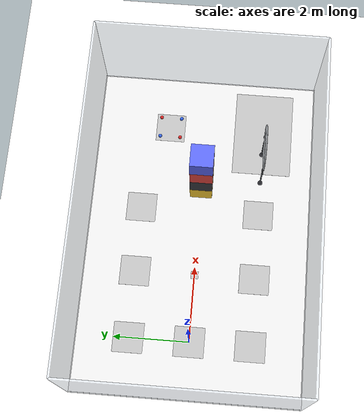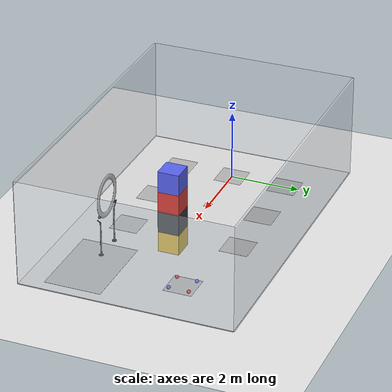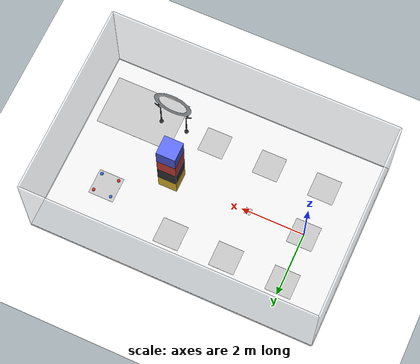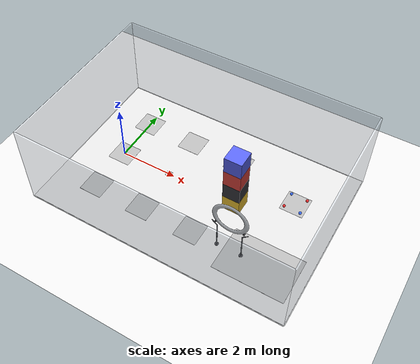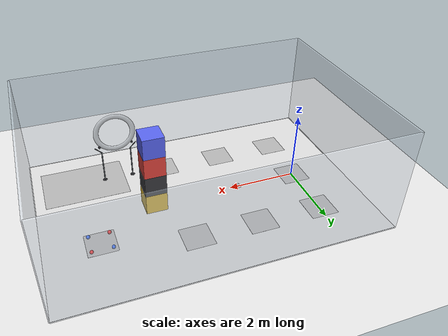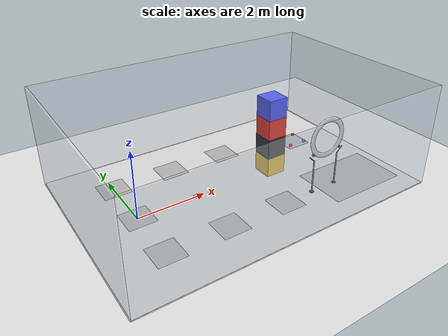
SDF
<sdf version='1.7'>
  <world name='craic_2026'>
    <light name='sun' type='directional'>
      <cast_shadows>1</cast_shadows>
      <pose>0 0 10 0 0 0</pose>
      <diffuse>0.85 0.85 0.85 1</diffuse>
      <specular>0.2 0.2 0.2 1</specular>
      <attenuation>
        <range>1000</range>
        <constant>0.9</constant>
        <linear>0.01</linear>
        <quadratic>0.001</quadratic>
      </attenuation>
      <direction>-0.45 0.18 -0.87</direction>
    </light>
    <gravity>0 0 -9.8</gravity>
    <magnetic_field>6e-06 2.3e-05 -4.2e-05</magnetic_field>
    <atmosphere type='adiabatic'/>
    <physics type='ode'>
      <max_step_size>0.001</max_step_size>
      <real_time_factor>1</real_time_factor>
      <real_time_update_rate>1000</real_time_update_rate>
    </physics>
    <scene>
      <ambient>0.5 0.5 0.5 1</ambient>
      <background>0.97 0.97 0.99 1</background>
      <shadows>1</shadows>
    </scene>
    <wind/>
    <spherical_coordinates>
      <surface_model>EARTH_WGS84</surface_model>
      <latitude_deg>0</latitude_deg>
      <longitude_deg>0</longitude_deg>
      <elevation>0</elevation>
      <heading_deg>0</heading_deg>
    </spherical_coordinates>
    <model name='ground_plane'>
      <static>1</static>
      <link name='link'>
        <collision name='collision'>
          <geometry>
            <plane>
              <normal>0 0 1</normal>
              <size>100 100</size>
            </plane>
          </geometry>
          <surface>
            <contact><ode/></contact>
            <bounce/>
            <friction>
              <torsional><ode/></torsional>
              <ode/>
            </friction>
          </surface>
        </collision>
        <visual name='visual'>
          <cast_shadows>0</cast_shadows>
          <geometry>
            <plane>
              <normal>0 0 1</normal>
              <size>100 100</size>
            </plane>
          </geometry>
          <material>
            <script>
              <uri>file://media/materials/scripts/gazebo.material</uri>
              <name>Gazebo/White</name>
            </script>
          </material>
        </visual>
      </link>
    </model>
    <include>
      <uri>model://craic_2026_arena</uri>
      <pose>0 0 0 0 0 0</pose>
    </include>
    <include>
      <uri>model://craic_2026_ring</uri>
      <pose>4.968642 -1.6 0 0 0 0</pose>
    </include>
  </world>
</sdf>

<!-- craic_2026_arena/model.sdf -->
<sdf version='1.7'>
  <model name='craic_2026_arena'>

    <model name='competition_floor'>
      <static>1</static>
      <pose>3 0 0.005 0 0 0</pose>
      <link name='link'>
        <collision name='collision'>
          <geometry>
            <box>
              <size>9 6 0.01</size>
            </box>
          </geometry>
          <surface>
            <contact><ode/></contact>
            <bounce/>
            <friction>
              <torsional><ode/></torsional>
              <ode/>
            </friction>
          </surface>
        </collision>
        <visual name='visual'>
          <geometry>
            <box>
              <size>9 6 0.01</size>
            </box>
          </geometry>
          <material>
            <ambient>0.88 0.88 0.88 1</ambient>
            <diffuse>0.88 0.88 0.88 1</diffuse>
            <specular>0.1 0.1 0.1 1</specular>
            <emissive>0 0 0 1</emissive>
          </material>
        </visual>
      </link>
    </model>
    <model name='north_wall'>
      <static>1</static>
      <pose>3 3 1.5 0 0 0</pose>
      <link name='link'>
        <collision name='collision'>
          <geometry>
            <box>
              <size>9 0.05 3</size>
            </box>
          </geometry>
          <surface>
            <contact><ode/></contact>
            <bounce/>
            <friction>
              <torsional><ode/></torsional>
              <ode/>
            </friction>
          </surface>
        </collision>
        <visual name='visual'>
          <geometry>
            <box>
              <size>9 0.05 3</size>
            </box>
          </geometry>
          <material>
            <ambient>0.8 0.85 0.9 0.35</ambient>
            <diffuse>0.8 0.85 0.9 0.35</diffuse>
            <specular>0.1 0.1 0.1 1</specular>
            <emissive>0 0 0 1</emissive>
          </material>
          <transparency>0.55</transparency>
        </visual>
      </link>
    </model>
    <model name='south_wall'>
      <static>1</static>
      <pose>3 -3 1.5 0 0 0</pose>
      <link name='link'>
        <collision name='collision'>
          <geometry>
            <box>
              <size>9 0.05 3</size>
            </box>
          </geometry>
          <surface>
            <contact><ode/></contact>
            <bounce/>
            <friction>
              <torsional><ode/></torsional>
              <ode/>
            </friction>
          </surface>
        </collision>
        <visual name='visual'>
          <geometry>
            <box>
              <size>9 0.05 3</size>
            </box>
          </geometry>
          <material>
            <ambient>0.8 0.85 0.9 0.35</ambient>
            <diffuse>0.8 0.85 0.9 0.35</diffuse>
            <specular>0.1 0.1 0.1 1</specular>
            <emissive>0 0 0 1</emissive>
          </material>
          <transparency>0.55</transparency>
        </visual>
      </link>
    </model>
    <model name='west_wall'>
      <static>1</static>
      <pose>-1.5 0 1.5 0 0 0</pose>
      <link name='link'>
        <collision name='collision'>
          <geometry>
            <box>
              <size>0.05 6 3</size>
            </box>
          </geometry>
          <surface>
            <contact><ode/></contact>
            <bounce/>
            <friction>
              <torsional><ode/></torsional>
              <ode/>
            </friction>
          </surface>
        </collision>
        <visual name='visual'>
          <geometry>
            <box>
              <size>0.05 6 3</size>
            </box>
          </geometry>
          <material>
            <ambient>0.8 0.85 0.9 0.35</ambient>
            <diffuse>0.8 0.85 0.9 0.35</diffuse>
            <specular>0.1 0.1 0.1 1</specular>
            <emissive>0 0 0 1</emissive>
          </material>
          <transparency>0.55</transparency>
        </visual>
      </link>
    </model>
    <model name='east_wall'>
      <static>1</static>
      <pose>7.5 0 1.5 0 0 0</pose>
      <link name='link'>
        <collision name='collision'>
          <geometry>
            <box>
              <size>0.05 6 3</size>
            </box>
          </geometry>
          <surface>
            <contact><ode/></contact>
            <bounce/>
            <friction>
              <torsional><ode/></torsional>
              <ode/>
            </friction>
          </surface>
        </collision>
        <visual name='visual'>
          <geometry>
            <box>
              <size>0.05 6 3</size>
            </box>
          </geometry>
          <material>
            <ambient>0.8 0.85 0.9 0.35</ambient>
            <diffuse>0.8 0.85 0.9 0.35</diffuse>
            <specular>0.1 0.1 0.1 1</specular>
            <emissive>0 0 0 1</emissive>
          </material>
          <transparency>0.55</transparency>
        </visual>
      </link>
    </model>
    <model name='obstacle_cube'>
      <static>1</static>
      <pose>4.3 0 0 0 0 0</pose>
      <link name='link'>

        <collision name='collision_0'>
          <pose>0 0 0.3 0 0 0</pose>
          <geometry>
            <box>
              <size>0.6 0.6 0.6</size>
            </box>
          </geometry>
          <surface>
            <contact><ode/></contact>
            <bounce/>
            <friction>
              <torsional><ode/></torsional>
              <ode/>
            </friction>
          </surface>
        </collision>
        <collision name='collision_1'>
          <pose>0 0 0.9 0 0 0</pose>
          <geometry>
            <box>
              <size>0.6 0.6 0.6</size>
            </box>
          </geometry>
          <surface>
            <contact><ode/></contact>
            <bounce/>
            <friction>
              <torsional><ode/></torsional>
              <ode/>
            </friction>
          </surface>
        </collision>
        <collision name='collision_2'>
          <pose>0 0 1.5 0 0 0</pose>
          <geometry>
            <box>
              <size>0.6 0.6 0.6</size>
            </box>
          </geometry>
          <surface>
            <contact><ode/></contact>
            <bounce/>
            <friction>
              <torsional><ode/></torsional>
              <ode/>
            </friction>
          </surface>
        </collision>
        <collision name='collision_3'>
          <pose>0 0 2.1 0 0 0</pose>
          <geometry>
            <box>
              <size>0.6 0.6 0.6</size>
            </box>
          </geometry>
          <surface>
            <contact><ode/></contact>
            <bounce/>
            <friction>
              <torsional><ode/></torsional>
              <ode/>
            </friction>
          </surface>
        </collision>
        <visual name='segment_0'>
          <pose>0 0 0.3 0 0 0</pose>
          <geometry>
            <box>
              <size>0.6 0.6 0.6</size>
            </box>
          </geometry>
          <material>
            <ambient>0.98 0.8 0.2 1</ambient>
            <diffuse>0.98 0.8 0.2 1</diffuse>
            <specular>0.18 0.18 0.18 1</specular>
            <emissive>0 0 0 1</emissive>
          </material>
        </visual>
        <visual name='segment_1'>
          <pose>0 0 0.9 0 0 0</pose>
          <geometry>
            <box>
              <size>0.6 0.6 0.6</size>
            </box>
          </geometry>
          <material>
            <ambient>0.22 0.22 0.24 1</ambient>
            <diffuse>0.22 0.22 0.24 1</diffuse>
            <specular>0.18 0.18 0.18 1</specular>
            <emissive>0 0 0 1</emissive>
          </material>
        </visual>
        <visual name='segment_2'>
          <pose>0 0 1.5 0 0 0</pose>
          <geometry>
            <box>
              <size>0.6 0.6 0.6</size>
            </box>
          </geometry>
          <material>
            <ambient>0.88 0.27 0.24 1</ambient>
            <diffuse>0.88 0.27 0.24 1</diffuse>
            <specular>0.18 0.18 0.18 1</specular>
            <emissive>0 0 0 1</emissive>
          </material>
        </visual>
        <visual name='segment_3'>
          <pose>0 0 2.1 0 0 0</pose>
          <geometry>
            <box>
              <size>0.6 0.6 0.6</size>
            </box>
          </geometry>
          <material>
            <ambient>0.35 0.4 0.95 1</ambient>
            <diffuse>0.35 0.4 0.95 1</diffuse>
            <specular>0.18 0.18 0.18 1</specular>
            <emissive>0 0 0 1</emissive>
          </material>
        </visual>
      </link>
    </model>

    <link name='ring_movement_zone'>
      <pose>6 -1.6 0 0 0 0</pose>
      <visual name='visual'>
        <pose>0 0 0.021 0 0 0</pose>
        <geometry>
          <plane>
            <normal>0 0 1</normal>
            <size>2.4 1.6</size>
          </plane>
        </geometry>
          <material>
            <script>
              <uri>model://craic_2026_arena/materials/scripts</uri>
              <uri>model://craic_2026_arena/materials/textures</uri>
              <name>CRAIC/ZoneOverlay</name>
            </script>
          </material>
      </visual>
    </link>
    <link name='takeoff_pad'>
      <pose>0 0 0 0 0 -1.570796</pose>
      <collision name='collision'>
        <pose>0 0 0.01 0 0 0</pose>
        <geometry>
          <box>
            <size>0.8 0.8 0.02</size>
          </box>
        </geometry>
      </collision>
      <visual name='marker_visual'>
        <pose>0 0 0.022 0 0 0</pose>
        <geometry>
          <plane>
            <normal>0 0 1</normal>
            <size>0.8 0.8</size>
          </plane>
        </geometry>
          <material>
            <script>
              <uri>model://craic_2026_arena/materials/scripts</uri>
              <uri>model://craic_2026_arena/materials/textures</uri>
              <name>CRAIC/TakeoffPad</name>
            </script>
          </material>
      </visual>
    </link>
    <link name='landing_right_pad'>
      <pose>0 -1.6 0 0 0 -1.570796</pose>
      <collision name='collision'>
        <pose>0 0 0.01 0 0 0</pose>
        <geometry>
          <box>
            <size>0.8 0.8 0.02</size>
          </box>
        </geometry>
      </collision>
      <visual name='marker_visual'>
        <pose>0 0 0.022 0 0 0</pose>
        <geometry>
          <plane>
            <normal>0 0 1</normal>
            <size>0.8 0.8</size>
          </plane>
        </geometry>
          <material>
            <script>
              <uri>model://craic_2026_arena/materials/scripts</uri>
              <uri>model://craic_2026_arena/materials/textures</uri>
              <name>CRAIC/LandingRight</name>
            </script>
          </material>
      </visual>
    </link>
    <link name='landing_left_pad'>
      <pose>0 1.6 0 0 0 -1.570796</pose>
      <collision name='collision'>
        <pose>0 0 0.01 0 0 0</pose>
        <geometry>
          <box>
            <size>0.8 0.8 0.02</size>
          </box>
        </geometry>
      </collision>
      <visual name='marker_visual'>
        <pose>0 0 0.022 0 0 0</pose>
        <geometry>
          <plane>
            <normal>0 0 1</normal>
            <size>0.8 0.8</size>
          </plane>
        </geometry>
          <material>
            <script>
              <uri>model://craic_2026_arena/materials/scripts</uri>
              <uri>model://craic_2026_arena/materials/textures</uri>
              <name>CRAIC/LandingLeft</name>
            </script>
          </material>
      </visual>
    </link>
    <link name='qr_code_marker'>
      <pose>1.8 0 0 0 0 0</pose>
      <collision name='collision'>
        <pose>0 0 0.01 0 0 0</pose>
        <geometry>
          <box>
            <size>0.2 0.2 0.02</size>
          </box>
        </geometry>
      </collision>
      <visual name='marker_visual'>
        <pose>0 0 0.023 0 0 0</pose>
        <geometry>
          <plane>
            <normal>0 0 1</normal>
            <size>0.2 0.2</size>
          </plane>
        </geometry>
          <material>
            <script>
              <uri>model://craic_2026_arena/materials/scripts</uri>
              <uri>model://craic_2026_arena/materials/textures</uri>
              <name>CRAIC/QRCode</name>
            </script>
          </material>
      </visual>
    </link>
    <link name='target_top_left'>
      <pose>3.6 -1.6 0 0 0 0</pose>
      <collision name='collision'>
        <pose>0 0 0.01 0 0 0</pose>
        <geometry>
          <box>
            <size>0.8 0.8 0.02</size>
          </box>
        </geometry>
      </collision>
      <visual name='marker_visual'>
        <pose>0 0 0.022 0 0 0</pose>
        <geometry>
          <plane>
            <normal>0 0 1</normal>
            <size>0.8 0.8</size>
          </plane>
        </geometry>
          <material>
            <script>
              <uri>model://craic_2026_arena/materials/scripts</uri>
              <uri>model://craic_2026_arena/materials/textures</uri>
              <name>CRAIC/TargetTopLeft</name>
            </script>
          </material>
      </visual>
    </link>
    <link name='target_top_right'>
      <pose>1.8 -1.6 0 0 0 0</pose>
      <collision name='collision'>
        <pose>0 0 0.01 0 0 0</pose>
        <geometry>
          <box>
            <size>0.8 0.8 0.02</size>
          </box>
        </geometry>
      </collision>
      <visual name='marker_visual'>
        <pose>0 0 0.022 0 0 0</pose>
        <geometry>
          <plane>
            <normal>0 0 1</normal>
            <size>0.8 0.8</size>
          </plane>
        </geometry>
          <material>
            <script>
              <uri>model://craic_2026_arena/materials/scripts</uri>
              <uri>model://craic_2026_arena/materials/textures</uri>
              <name>CRAIC/TargetTopRight</name>
            </script>
          </material>
      </visual>
    </link>
    <link name='target_bottom_left'>
      <pose>3.6 1.6 0 0 0 0</pose>
      <collision name='collision'>
        <pose>0 0 0.01 0 0 0</pose>
        <geometry>
          <box>
            <size>0.8 0.8 0.02</size>
          </box>
        </geometry>
      </collision>
      <visual name='marker_visual'>
        <pose>0 0 0.022 0 0 0</pose>
        <geometry>
          <plane>
            <normal>0 0 1</normal>
            <size>0.8 0.8</size>
          </plane>
        </geometry>
          <material>
            <script>
              <uri>model://craic_2026_arena/materials/scripts</uri>
              <uri>model://craic_2026_arena/materials/textures</uri>
              <name>CRAIC/TargetBottomLeft</name>
            </script>
          </material>
      </visual>
    </link>
    <link name='target_bottom_right'>
      <pose>1.8 1.6 0 0 0 0</pose>
      <collision name='collision'>
        <pose>0 0 0.01 0 0 0</pose>
        <geometry>
          <box>
            <size>0.8 0.8 0.02</size>
          </box>
        </geometry>
      </collision>
      <visual name='marker_visual'>
        <pose>0 0 0.022 0 0 0</pose>
        <geometry>
          <plane>
            <normal>0 0 1</normal>
            <size>0.8 0.8</size>
          </plane>
        </geometry>
          <material>
            <script>
              <uri>model://craic_2026_arena/materials/scripts</uri>
              <uri>model://craic_2026_arena/materials/textures</uri>
              <name>CRAIC/TargetBottomRight</name>
            </script>
          </material>
      </visual>
    </link>
    <link name='special_target'>
      <pose>6 1 0 0 0 0</pose>
      <collision name='collision'>
        <pose>0 0 0.01 0 0 0</pose>
        <geometry>
          <box>
            <size>0.8 0.8 0.02</size>
          </box>
        </geometry>
      </collision>
      <visual name='marker_visual'>
        <pose>0 0 0.022 0 0 0</pose>
        <geometry>
          <plane>
            <normal>0 0 1</normal>
            <size>0.8 0.8</size>
          </plane>
        </geometry>
          <material>
            <script>
              <uri>model://craic_2026_arena/materials/scripts</uri>
              <uri>model://craic_2026_arena/materials/textures</uri>
              <name>CRAIC/SpecialTarget</name>
            </script>
          </material>
      </visual>
      <visual name='light_red_1'>
        <pose>-0.28 -0.28 0.07 0 0 0</pose>
        <geometry>
          <sphere>
            <radius>0.05</radius>
          </sphere>
        </geometry>
          <material>
            <ambient>0.9 0.15 0.15 1</ambient>
            <diffuse>0.9 0.15 0.15 1</diffuse>
            <specular>0.1 0.1 0.1 1</specular>
            <emissive>0.6 0.05 0.05 1</emissive>
          </material>
      </visual>
      <visual name='light_blue_1'>
        <pose>-0.28 0.28 0.07 0 0 0</pose>
        <geometry>
          <sphere>
            <radius>0.05</radius>
          </sphere>
        </geometry>
          <material>
            <ambient>0.2 0.4 0.95 1</ambient>
            <diffuse>0.2 0.4 0.95 1</diffuse>
            <specular>0.1 0.1 0.1 1</specular>
            <emissive>0.05 0.15 0.6 1</emissive>
          </material>
      </visual>
      <visual name='light_red_2'>
        <pose>0.28 0.28 0.07 0 0 0</pose>
        <geometry>
          <sphere>
            <radius>0.05</radius>
          </sphere>
        </geometry>
          <material>
            <ambient>0.9 0.15 0.15 1</ambient>
            <diffuse>0.9 0.15 0.15 1</diffuse>
            <specular>0.1 0.1 0.1 1</specular>
            <emissive>0.6 0.05 0.05 1</emissive>
          </material>
      </visual>
      <visual name='light_blue_2'>
        <pose>0.28 -0.28 0.07 0 0 0</pose>
        <geometry>
          <sphere>
            <radius>0.05</radius>
          </sphere>
        </geometry>
          <material>
            <ambient>0.2 0.4 0.95 1</ambient>
            <diffuse>0.2 0.4 0.95 1</diffuse>
            <specular>0.1 0.1 0.1 1</specular>
            <emissive>0.05 0.15 0.6 1</emissive>
          </material>
      </visual>
    </link>
  </model>
</sdf>

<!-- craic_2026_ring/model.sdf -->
<sdf version='1.7'>
  <model name='craic_2026_ring'>
    <static>1</static>
    <link name='ring_frame'>
      <pose>0 0 1.6 0 0 0</pose>

      <collision name='ring_collision_0'>
        <pose>0.525 0 0 0 1.570796 0</pose>
        <geometry>
          <box>
            <size>0.137445 0.04 0.15</size>
          </box>
        </geometry>
      </collision>

      <collision name='ring_collision_1'>
        <pose>0.507111 0 0.13588 0 1.832596 0</pose>
        <geometry>
          <box>
            <size>0.137445 0.04 0.15</size>
          </box>
        </geometry>
      </collision>

      <collision name='ring_collision_2'>
        <pose>0.454663 0 0.2625 0 2.094395 0</pose>
        <geometry>
          <box>
            <size>0.137445 0.04 0.15</size>
          </box>
        </geometry>
      </collision>

      <collision name='ring_collision_3'>
        <pose>0.371231 0 0.371231 0 2.356194 0</pose>
        <geometry>
          <box>
            <size>0.137445 0.04 0.15</size>
          </box>
        </geometry>
      </collision>

      <collision name='ring_collision_4'>
        <pose>0.2625 0 0.454663 0 2.617994 0</pose>
        <geometry>
          <box>
            <size>0.137445 0.04 0.15</size>
          </box>
        </geometry>
      </collision>

      <collision name='ring_collision_5'>
        <pose>0.13588 0 0.507111 0 2.879793 0</pose>
        <geometry>
          <box>
            <size>0.137445 0.04 0.15</size>
          </box>
        </geometry>
      </collision>

      <collision name='ring_collision_6'>
        <pose>0 0 0.525 0 3.141593 0</pose>
        <geometry>
          <box>
            <size>0.137445 0.04 0.15</size>
          </box>
        </geometry>
      </collision>

      <collision name='ring_collision_7'>
        <pose>-0.13588 0 0.507111 0 3.403392 0</pose>
        <geometry>
          <box>
            <size>0.137445 0.04 0.15</size>
          </box>
        </geometry>
      </collision>

      <collision name='ring_collision_8'>
        <pose>-0.2625 0 0.454663 0 3.665191 0</pose>
        <geometry>
          <box>
            <size>0.137445 0.04 0.15</size>
          </box>
        </geometry>
      </collision>

      <collision name='ring_collision_9'>
        <pose>-0.371231 0 0.371231 0 3.926991 0</pose>
        <geometry>
          <box>
            <size>0.137445 0.04 0.15</size>
          </box>
        </geometry>
      </collision>

      <collision name='ring_collision_10'>
        <pose>-0.454663 0 0.2625 0 4.18879 0</pose>
        <geometry>
          <box>
            <size>0.137445 0.04 0.15</size>
          </box>
        </geometry>
      </collision>

      <collision name='ring_collision_11'>
        <pose>-0.507111 0 0.13588 0 4.45059 0</pose>
        <geometry>
          <box>
            <size>0.137445 0.04 0.15</size>
          </box>
        </geometry>
      </collision>

      <collision name='ring_collision_12'>
        <pose>-0.525 0 0 0 4.712389 0</pose>
        <geometry>
          <box>
            <size>0.137445 0.04 0.15</size>
          </box>
        </geometry>
      </collision>

      <collision name='ring_collision_13'>
        <pose>-0.507111 0 -0.13588 0 4.974188 0</pose>
        <geometry>
          <box>
            <size>0.137445 0.04 0.15</size>
          </box>
        </geometry>
      </collision>

      <collision name='ring_collision_14'>
        <pose>-0.454663 0 -0.2625 0 5.235988 0</pose>
        <geometry>
          <box>
            <size>0.137445 0.04 0.15</size>
          </box>
        </geometry>
      </collision>

      <collision name='ring_collision_15'>
        <pose>-0.371231 0 -0.371231 0 5.497787 0</pose>
        <geometry>
          <box>
            <size>0.137445 0.04 0.15</size>
          </box>
        </geometry>
      </collision>

      <collision name='ring_collision_16'>
        <pose>-0.2625 0 -0.454663 0 5.759587 0</pose>
        <geometry>
          <box>
            <size>0.137445 0.04 0.15</size>
          </box>
        </geometry>
      </collision>

      <collision name='ring_collision_17'>
        <pose>-0.13588 0 -0.507111 0 6.021386 0</pose>
        <geometry>
          <box>
            <size>0.137445 0.04 0.15</size>
          </box>
        </geometry>
      </collision>

      <collision name='ring_collision_18'>
        <pose>-0 0 -0.525 0 6.283185 0</pose>
        <geometry>
          <box>
            <size>0.137445 0.04 0.15</size>
          </box>
        </geometry>
      </collision>

      <collision name='ring_collision_19'>
        <pose>0.13588 0 -0.507111 0 6.544985 0</pose>
        <geometry>
          <box>
            <size>0.137445 0.04 0.15</size>
          </box>
        </geometry>
      </collision>

      <collision name='ring_collision_20'>
        <pose>0.2625 0 -0.454663 0 6.806784 0</pose>
        <geometry>
          <box>
            <size>0.137445 0.04 0.15</size>
          </box>
        </geometry>
      </collision>

      <collision name='ring_collision_21'>
        <pose>0.371231 0 -0.371231 0 7.068583 0</pose>
        <geometry>
          <box>
            <size>0.137445 0.04 0.15</size>
          </box>
        </geometry>
      </collision>

      <collision name='ring_collision_22'>
        <pose>0.454663 0 -0.2625 0 7.330383 0</pose>
        <geometry>
          <box>
            <size>0.137445 0.04 0.15</size>
          </box>
        </geometry>
      </collision>

      <collision name='ring_collision_23'>
        <pose>0.507111 0 -0.13588 0 7.592182 0</pose>
        <geometry>
          <box>
            <size>0.137445 0.04 0.15</size>
          </box>
        </geometry>
      </collision>

      <visual name='ring_visual'>
        <geometry>
          <mesh>
            <uri>model://craic_2026_ring/meshes/ring.obj</uri>
          </mesh>
        </geometry>
          <material>
            <ambient>0.8 0.82 0.84 1</ambient>
            <diffuse>0.8 0.82 0.84 1</diffuse>
            <specular>0.9 0.9 0.9 1</specular>
            <emissive>0.02 0.02 0.02 1</emissive>
          </material>
      </visual>
    </link>

    <link name='ring_support_1'>
      <pose>-0.42 0 0.5 0 0 0</pose>
      <collision name='collision'>
        <geometry>
          <cylinder>
            <radius>0.018</radius>
            <length>1</length>
          </cylinder>
        </geometry>
      </collision>
      <visual name='visual'>
        <geometry>
          <cylinder>
            <radius>0.018</radius>
            <length>1</length>
          </cylinder>
        </geometry>
          <material>
            <ambient>0.42 0.44 0.46 1</ambient>
            <diffuse>0.42 0.44 0.46 1</diffuse>
            <specular>0.55 0.55 0.55 1</specular>
            <emissive>0 0 0 1</emissive>
          </material>
      </visual>
    </link>
    <link name='ring_support_foot_1'>
      <pose>-0.42 0 0.012 0 0 0</pose>
      <collision name='collision'>
        <geometry>
          <cylinder>
            <radius>0.065</radius>
            <length>0.024</length>
          </cylinder>
        </geometry>
      </collision>
      <visual name='visual'>
        <geometry>
          <cylinder>
            <radius>0.065</radius>
            <length>0.024</length>
          </cylinder>
        </geometry>
          <material>
            <ambient>0.18 0.18 0.2 1</ambient>
            <diffuse>0.18 0.18 0.2 1</diffuse>
            <specular>0.55 0.55 0.55 1</specular>
            <emissive>0 0 0 1</emissive>
          </material>
      </visual>
    </link>
    <link name='ring_brace_1'>
      <pose>-0.51 0 1.085757 0 -0.809534 0</pose>
      <collision name='collision'>
        <geometry>
          <cylinder>
            <radius>0.012</radius>
            <length>0.248631</length>
          </cylinder>
        </geometry>
      </collision>
      <visual name='visual'>
        <geometry>
          <cylinder>
            <radius>0.012</radius>
            <length>0.248631</length>
          </cylinder>
        </geometry>
          <material>
            <ambient>0.32 0.33 0.35 1</ambient>
            <diffuse>0.32 0.33 0.35 1</diffuse>
            <specular>0.55 0.55 0.55 1</specular>
            <emissive>0 0 0 1</emissive>
          </material>
      </visual>
    </link>
    <link name='ring_clamp_1'>
      <pose>-0.47 0 1.191514 1.570796 0 0</pose>
      <collision name='collision'>
        <geometry>
          <cylinder>
            <radius>0.03</radius>
            <length>0.06</length>
          </cylinder>
        </geometry>
      </collision>
      <visual name='visual'>
        <geometry>
          <cylinder>
            <radius>0.03</radius>
            <length>0.06</length>
          </cylinder>
        </geometry>
          <material>
            <ambient>0.24 0.24 0.26 1</ambient>
            <diffuse>0.24 0.24 0.26 1</diffuse>
            <specular>0.55 0.55 0.55 1</specular>
            <emissive>0 0 0 1</emissive>
          </material>
      </visual>
    </link>
    <link name='ring_support_2'>
      <pose>0.42 0 0.5 0 0 0</pose>
      <collision name='collision'>
        <geometry>
          <cylinder>
            <radius>0.018</radius>
            <length>1</length>
          </cylinder>
        </geometry>
      </collision>
      <visual name='visual'>
        <geometry>
          <cylinder>
            <radius>0.018</radius>
            <length>1</length>
          </cylinder>
        </geometry>
          <material>
            <ambient>0.42 0.44 0.46 1</ambient>
            <diffuse>0.42 0.44 0.46 1</diffuse>
            <specular>0.55 0.55 0.55 1</specular>
            <emissive>0 0 0 1</emissive>
          </material>
      </visual>
    </link>
    <link name='ring_support_foot_2'>
      <pose>0.42 0 0.012 0 0 0</pose>
      <collision name='collision'>
        <geometry>
          <cylinder>
            <radius>0.065</radius>
            <length>0.024</length>
          </cylinder>
        </geometry>
      </collision>
      <visual name='visual'>
        <geometry>
          <cylinder>
            <radius>0.065</radius>
            <length>0.024</length>
          </cylinder>
        </geometry>
          <material>
            <ambient>0.18 0.18 0.2 1</ambient>
            <diffuse>0.18 0.18 0.2 1</diffuse>
            <specular>0.55 0.55 0.55 1</specular>
            <emissive>0 0 0 1</emissive>
          </material>
      </visual>
    </link>
    <link name='ring_brace_2'>
      <pose>0.51 0 1.085757 0 0.809534 0</pose>
      <collision name='collision'>
        <geometry>
          <cylinder>
            <radius>0.012</radius>
            <length>0.248631</length>
          </cylinder>
        </geometry>
      </collision>
      <visual name='visual'>
        <geometry>
          <cylinder>
            <radius>0.012</radius>
            <length>0.248631</length>
          </cylinder>
        </geometry>
          <material>
            <ambient>0.32 0.33 0.35 1</ambient>
            <diffuse>0.32 0.33 0.35 1</diffuse>
            <specular>0.55 0.55 0.55 1</specular>
            <emissive>0 0 0 1</emissive>
          </material>
      </visual>
    </link>
    <link name='ring_clamp_2'>
      <pose>0.47 0 1.191514 1.570796 0 0</pose>
      <collision name='collision'>
        <geometry>
          <cylinder>
            <radius>0.03</radius>
            <length>0.06</length>
          </cylinder>
        </geometry>
      </collision>
      <visual name='visual'>
        <geometry>
          <cylinder>
            <radius>0.03</radius>
            <length>0.06</length>
          </cylinder>
        </geometry>
          <material>
            <ambient>0.24 0.24 0.26 1</ambient>
            <diffuse>0.24 0.24 0.26 1</diffuse>
            <specular>0.55 0.55 0.55 1</specular>
            <emissive>0 0 0 1</emissive>
          </material>
      </visual>
    </link>
  </model>
</sdf>
